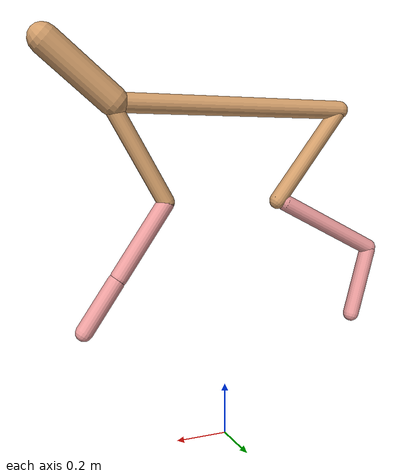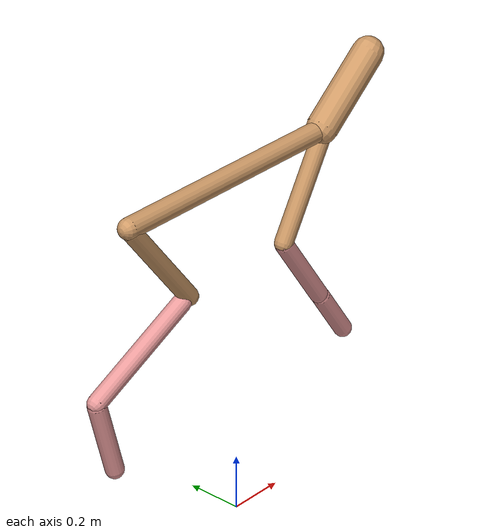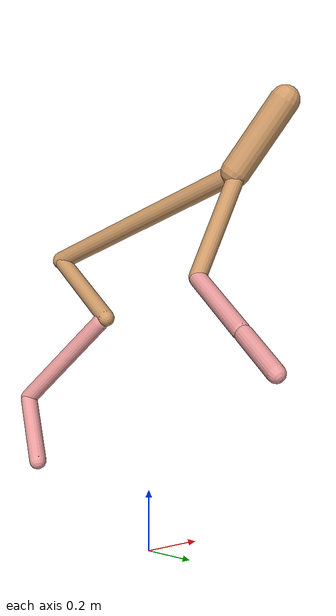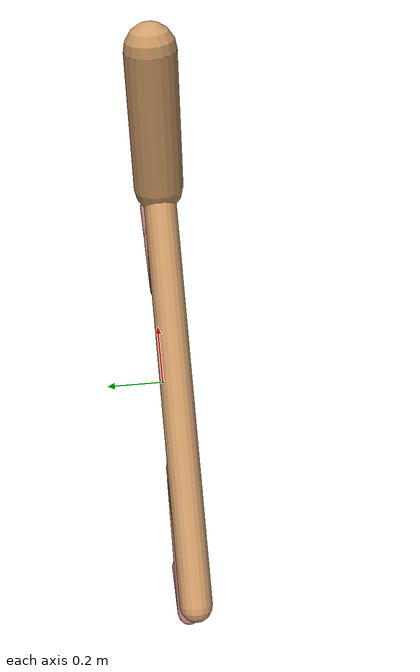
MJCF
<mujoco model="cheetah">
  <compiler angle="radian" coordinate="local" inertiafromgeom="true" settotalmass="14" />
  <default>
    <joint armature=".1" damping=".01" limited="true" solimplimit="0 .8 .03" solreflimit=".02 1" stiffness="8" />
    <geom conaffinity="0" condim="3" contype="1" friction="0.8 .1 .1" rgba="0.8 0.6 .4 1" solimp="0.0 0.8 0.01" solref="0.02 1" />
    <motor ctrllimited="true" ctrlrange="-1 1" />
  </default>
  <size nstack="300000" nuser_geom="1" />
  <option gravity="0 0 -9.81" timestep="0.01" />
  <worldbody>
    <body name="torso" pos="0.0 0.0 1.269246571605401">
      <joint armature="0" axis="1 0 0" damping="0" limited="false" name="ignorex" pos="0 0 0" stiffness="0" type="slide" />
      <joint armature="0" axis="0 0 1" damping="0" limited="false" name="ignorez" pos="0 0 0" stiffness="0" type="slide" />
      <joint armature="0" axis="0 1 0" damping="0" limited="false" name="ignorey" pos="0 0 0" stiffness="0" type="hinge" />
      <geom fromto="-0.5 0.0 0.0 0.4366742152324155 0.0 0.0" name="torso" size="0.0359570852676024" type="capsule" />
      <geom axisangle="0 1 0 .87" name="head" pos="0.5366742152324154 0.0 0.1" size="0.05432092775621209 0.15" type="capsule" />

      <body name="bthigh" pos="-.5 0 0">
        <joint axis="0 1 0" damping="6" name="bthigh" pos="0 0 0" range="-.52 1.05" stiffness="240" type="hinge" />
        <geom axisangle="0 1 0 -3.8" name="bthigh" pos="0.142649140034973 0.0 -0.18544388204546491" size="0.0322 0.21494979057862976" type="capsule" />
        <body name="bshin" pos="0.24529828006994603 0.0 -0.3608877640909298">
          <joint axis="0 1 0" damping="4.5" name="bshin" pos="0 0 0" range="-.785 .785" stiffness="180" type="hinge" />
          <geom axisangle="0 1 0 -2.03" name="bshin" pos="-0.20472240830856164 0.0 -0.10236120415428082" rgba="0.9 0.6 0.6 1" size="0.0322 0.22236185232272046" type="capsule" />
          <body name="bfoot" pos="-0.4094448166171233 0.0 -0.20472240830856164">
            <joint axis="0 1 0" damping="3" name="bfoot" pos="0 0 0" range="-.4 .785" stiffness="120" type="hinge" />
            <geom axisangle="0 1 0 -.27" name="bfoot" pos="0.043398594845710986 0.0 -0.14032212333446553" rgba="0.9 0.6 0.6 1" size="0.0322 0.13934676078890482" type="capsule" />
            <inertial mass="10" />
          </body>
        </body>
      </body>
      <body name="fthigh" pos="0.43667421523241545 0.0 0.0">
        <joint axis="0 1 0" damping="4.5" name="fthigh" pos="0 0 0" range="-1.5 0.8" stiffness="180" type="hinge" />
        <geom axisangle="0 1 0 .52" name="fthigh" pos="-0.10322532882117494 0.0 -0.1769577065505856" size="0.0322 0.19894014566846072" type="capsule" />
        <body name="fshin" pos="-0.20645065764234988 0.0 -0.3539154131011712">
          <joint axis="0 1 0" damping="3" name="fshin" pos="0 0 0" range="-1.2 1.1" stiffness="120" type="hinge" />
          <geom axisangle="0 1 0 -.6" name="fshin" pos="0.09576975364848499 0.0 -0.13260427428251767" rgba="0.9 0.6 0.6 1" size="0.0322 0.15855380030719426" type="capsule" />
          <body name="ffoot" pos="0.19153950729696997 0.0 -0.26520854856503534">
            <joint axis="0 1 0" damping="1.5" name="ffoot" pos="0 0 0" range="-3.1 -0.3" stiffness="60" type="hinge" />
            <geom axisangle="0 1 0 -.6" name="ffoot" pos="0.06376717596975687 0.0 -0.09919338484184403" rgba="0.9 0.6 0.6 1" size="0.0322 0.10470533982550564" type="capsule" />
            <inertial mass="10" />
          </body>
        </body>
      </body>
    </body>
  </worldbody>
  <actuator>
    <motor gear="120" joint="bthigh" name="bthigh" />
    <motor gear="90" joint="bshin" name="bshin" />
    <motor gear="60" joint="bfoot" name="bfoot" />
    <motor gear="120" joint="fthigh" name="fthigh" />
    <motor gear="60" joint="fshin" name="fshin" />
    <motor gear="30" joint="ffoot" name="ffoot" />
  </actuator>
</mujoco>
